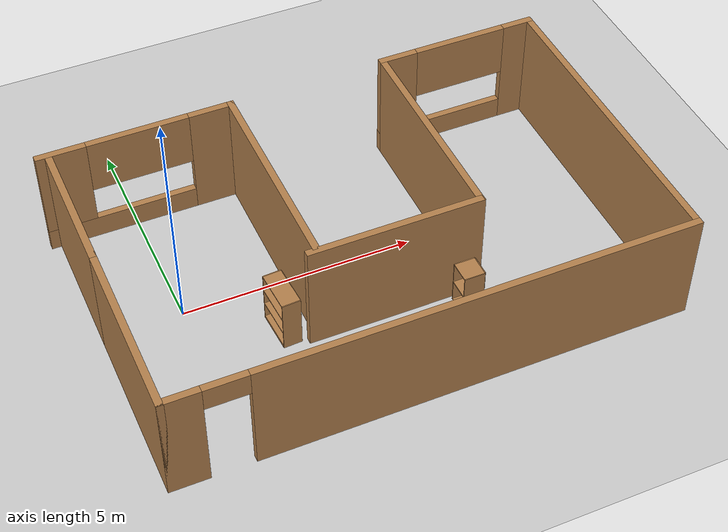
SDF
<sdf version="1.6">
 <world name="default">
  <light name="sun" type="directional">
   <pose>0 0 10 0 -0 0</pose>
   <diffuse>0.8 0.8 0.8 1</diffuse>
   <specular>0.2 0.2 0.2 1</specular>
   <attenuation>
    <range>1000</range>
    <constant>0.9</constant>
    <linear>0.01</linear>
    <quadratic>0.001</quadratic>
   </attenuation>
   <direction>-0.5 0.1 -0.9</direction>
  </light>
  <model name="ground_plane">
   <static>1</static>
   <link name="link">
    <collision name="collision">
     <geometry><plane><normal>0 0 1</normal><size>100 100</size></plane></geometry>
     <surface>
      <contact><collide_bitmask>65535</collide_bitmask></contact>
      <friction><ode><mu>100</mu><mu2>50</mu2></ode></friction>
     </surface>
    </collision>
    <visual name="visual">
     <cast_shadows>0</cast_shadows>
     <geometry><plane><normal>0 0 1</normal><size>100 100</size></plane></geometry>
     <material>
      <script><uri>file://media/materials/scripts/gazebo.material</uri><name>Gazebo/Grey</name></script>
     </material>
    </visual>
   </link>
  </model>
  <gravity>0 0 -9.8</gravity>
  <magnetic_field>6e-06 2.3e-05 -4.2e-05</magnetic_field>
  <atmosphere type="adiabatic"/>
  <physics name="default_physics" default="0" type="ode">
   <max_step_size>0.001</max_step_size>
   <real_time_factor>1</real_time_factor>
   <real_time_update_rate>1000</real_time_update_rate>
  </physics>
  <scene><ambient>0.4 0.4 0.4 1</ambient><background>0.7 0.7 0.7 1</background><shadows>1</shadows></scene>
  <spherical_coordinates>
   <surface_model>EARTH_WGS84</surface_model>
   <latitude_deg>0</latitude_deg>
   <longitude_deg>0</longitude_deg>
   <elevation>0</elevation>
   <heading_deg>0</heading_deg>
  </spherical_coordinates>
  <model name="HomeServiceRobot">
   <pose>3.70729 -0.514543 0 0 -0 0</pose>
   <link name="Wall_0">
    <collision name="Wall_0_Collision">
     <geometry><box><size>3 0.15 2.5</size></box></geometry>
     <pose>0 0 1.25 0 -0 0</pose>
    </collision>
    <visual name="Wall_0_Visual">
     <pose>0 0 1.25 0 -0 0</pose>
     <geometry><box><size>3 0.15 2.5</size></box></geometry>
     <material>
      <script><uri>file://media/materials/scripts/gazebo.material</uri><name>Gazebo/Wood</name></script>
      <ambient>1 1 1 1</ambient>
     </material>
     <meta><layer>0</layer></meta>
    </visual>
    <pose>-5.325 1.85 0 0 0 -1.5708</pose>
   </link>
   <link name="Wall_1">
    <collision name="Wall_1_Collision">
     <geometry><box><size>4 0.15 2.5</size></box></geometry>
     <pose>0 0 1.25 0 -0 0</pose>
    </collision>
    <visual name="Wall_1_Visual">
     <pose>0 0 1.25 0 -0 0</pose>
     <geometry><box><size>4 0.15 2.5</size></box></geometry>
     <material>
      <script><uri>file://media/materials/scripts/gazebo.material</uri><name>Gazebo/Wood</name></script>
      <ambient>1 1 1 1</ambient>
     </material>
     <meta><layer>0</layer></meta>
    </visual>
    <pose>-5.325 -1.5 0 0 0 -1.5708</pose>
   </link>
   <link name="Wall_10">
    <collision name="Wall_10_Collision">
     <geometry><box><size>4.75 0.15 2.5</size></box></geometry>
     <pose>0 0 1.25 0 -0 0</pose>
    </collision>
    <visual name="Wall_10_Visual">
     <pose>0 0 1.25 0 -0 0</pose>
     <geometry><box><size>4.75 0.15 2.5</size></box></geometry>
     <material>
      <script><uri>file://media/materials/scripts/gazebo.material</uri><name>Gazebo/Wood</name></script>
      <ambient>1 1 1 1</ambient>
     </material>
     <meta><layer>0</layer></meta>
    </visual>
    <pose>2.015 1.125 0 0 0 -1.5708</pose>
   </link>
   <link name="Wall_11">
    <collision name="Wall_11_Collision">
     <geometry><box><size>3.75 0.15 2.5</size></box></geometry>
     <pose>0 0 1.25 0 -0 0</pose>
    </collision>
    <visual name="Wall_11_Visual">
     <pose>0 0 1.25 0 -0 0</pose>
     <geometry><box><size>3.75 0.15 2.5</size></box></geometry>
     <material>
      <script><uri>file://media/materials/scripts/gazebo.material</uri><name>Gazebo/Wood</name></script>
      <ambient>1 1 1 1</ambient>
     </material>
     <meta><layer>0</layer></meta>
    </visual>
    <pose>0.215 -1.175 0 0 -0 3.14159</pose>
   </link>
   <link name="Wall_2">
    <pose>0.1 -3.425 0 0 -0 0</pose>
    <visual name="Wall_2_Visual_0">
     <pose>-5.07882 0 1.25 0 -0 0</pose>
     <geometry><box><size>0.842355 0.15 2.5</size></box></geometry>
     <material>
      <script><uri>file://media/materials/scripts/gazebo.material</uri><name>Gazebo/Wood</name></script>
      <ambient>1 1 1 1</ambient>
     </material>
     <meta><layer>0</layer></meta>
    </visual>
    <collision name="Wall_2_Collision_0">
     <geometry><box><size>0.842355 0.15 2.5</size></box></geometry>
     <pose>-5.07882 0 1.25 0 -0 0</pose>
    </collision>
    <visual name="Wall_2_Visual_1">
     <pose>0.871178 0 1.25 0 -0 0</pose>
     <geometry><box><size>9.25765 0.15 2.5</size></box></geometry>
     <material>
      <script><uri>file://media/materials/scripts/gazebo.material</uri><name>Gazebo/Wood</name></script>
      <ambient>1 1 1 1</ambient>
     </material>
     <meta><layer>0</layer></meta>
    </visual>
    <collision name="Wall_2_Collision_1">
     <geometry><box><size>9.25765 0.15 2.5</size></box></geometry>
     <pose>0.871178 0 1.25 0 -0 0</pose>
    </collision>
    <visual name="Wall_2_Visual_2">
     <pose>-4.20765 0 2.25 0 -0 0</pose>
     <geometry><box><size>0.9 0.15 0.5</size></box></geometry>
     <material>
      <script><uri>file://media/materials/scripts/gazebo.material</uri><name>Gazebo/Wood</name></script>
      <ambient>1 1 1 1</ambient>
     </material>
     <meta><layer>0</layer></meta>
    </visual>
    <collision name="Wall_2_Collision_2">
     <geometry><box><size>0.9 0.15 0.5</size></box></geometry>
     <pose>-4.20765 0 2.25 0 -0 0</pose>
    </collision>
   </link>
   <link name="Wall_3">
    <collision name="Wall_3_Collision">
     <geometry><box><size>7 0.15 2.5</size></box></geometry>
     <pose>0 0 1.25 0 -0 0</pose>
    </collision>
    <visual name="Wall_3_Visual">
     <pose>0 0 1.25 0 -0 0</pose>
     <geometry><box><size>7 0.15 2.5</size></box></geometry>
     <material>
      <script><uri>file://media/materials/scripts/gazebo.material</uri><name>Gazebo/Wood</name></script>
      <ambient>1 1 1 1</ambient>
     </material>
     <meta><layer>0</layer></meta>
    </visual>
    <pose>5.525 0 0 0 -0 1.5708</pose>
   </link>
   <link name="Wall_4">
    <pose>3.77 3.425 0 0 -0 3.14159</pose>
    <visual name="Wall_4_Visual_0">
     <pose>-1.47143 0 1.25 0 -0 0</pose>
     <geometry><box><size>0.717145 0.15 2.5</size></box></geometry>
     <material>
      <script><uri>file://media/materials/scripts/gazebo.material</uri><name>Gazebo/Wood</name></script>
      <ambient>1 1 1 1</ambient>
     </material>
     <meta><layer>0</layer></meta>
    </visual>
    <collision name="Wall_4_Collision_0">
     <geometry><box><size>0.717145 0.15 2.5</size></box></geometry>
     <pose>-1.47143 0 1.25 0 -0 0</pose>
    </collision>
    <visual name="Wall_4_Visual_1">
     <pose>0.358572 0 0.25 0 -0 0</pose>
     <geometry><box><size>2.94286 0.15 0.5</size></box></geometry>
     <material>
      <script><uri>file://media/materials/scripts/gazebo.material</uri><name>Gazebo/Wood</name></script>
      <ambient>1 1 1 1</ambient>
     </material>
     <meta><layer>0</layer></meta>
    </visual>
    <collision name="Wall_4_Collision_1">
     <geometry><box><size>2.94286 0.15 0.5</size></box></geometry>
     <pose>0.358572 0 0.25 0 -0 0</pose>
    </collision>
    <visual name="Wall_4_Visual_2">
     <pose>1.39682 0 1.5 0 -0 0</pose>
     <geometry><box><size>0.866355 0.15 2</size></box></geometry>
     <material>
      <script><uri>file://media/materials/scripts/gazebo.material</uri><name>Gazebo/Wood</name></script>
      <ambient>1 1 1 1</ambient>
     </material>
     <meta><layer>0</layer></meta>
    </visual>
    <collision name="Wall_4_Collision_2">
     <geometry><box><size>0.866355 0.15 2</size></box></geometry>
     <pose>1.39682 0 1.5 0 -0 0</pose>
    </collision>
    <visual name="Wall_4_Visual_3">
     <pose>-0.074605 0 1.9 0 -0 0</pose>
     <geometry><box><size>2.0765 0.15 1.2</size></box></geometry>
     <material>
      <script><uri>file://media/materials/scripts/gazebo.material</uri><name>Gazebo/Wood</name></script>
      <ambient>1 1 1 1</ambient>
     </material>
     <meta><layer>0</layer></meta>
    </visual>
    <collision name="Wall_4_Collision_3">
     <geometry><box><size>2.0765 0.15 1.2</size></box></geometry>
     <pose>-0.074605 0 1.9 0 -0 0</pose>
    </collision>
   </link>
   <link name="Wall_7">
    <collision name="Wall_7_Collision">
     <geometry><box><size>4.65 0.15 2.5</size></box></geometry>
     <pose>0 0 1.25 0 -0 0</pose>
    </collision>
    <visual name="Wall_7_Visual">
     <pose>0 0 1.25 0 -0 0</pose>
     <geometry><box><size>4.65 0.15 2.5</size></box></geometry>
     <material>
      <script><uri>file://media/materials/scripts/gazebo.material</uri><name>Gazebo/Wood</name></script>
      <ambient>1 1 1 1</ambient>
     </material>
     <meta><layer>0</layer></meta>
    </visual>
    <pose>-1.425 1.175 0 0 -0 1.5708</pose>
   </link>
   <link name="Wall_8">
    <pose>-3.475 3.425 0 0 -0 3.14159</pose>
    <visual name="Wall_8_Visual_0">
     <pose>-1.61893 0 1.25 0 -0 0</pose>
     <geometry><box><size>1.01215 0.15 2.5</size></box></geometry>
     <material>
      <script><uri>file://media/materials/scripts/gazebo.material</uri><name>Gazebo/Wood</name></script>
      <ambient>1 1 1 1</ambient>
     </material>
     <meta><layer>0</layer></meta>
    </visual>
    <collision name="Wall_8_Collision_0">
     <geometry><box><size>1.01215 0.15 2.5</size></box></geometry>
     <pose>-1.61893 0 1.25 0 -0 0</pose>
    </collision>
    <visual name="Wall_8_Visual_1">
     <pose>0.506072 0 0.25 0 -0 0</pose>
     <geometry><box><size>3.23786 0.15 0.5</size></box></geometry>
     <material>
      <script><uri>file://media/materials/scripts/gazebo.material</uri><name>Gazebo/Wood</name></script>
      <ambient>1 1 1 1</ambient>
     </material>
     <meta><layer>0</layer></meta>
    </visual>
    <collision name="Wall_8_Collision_1">
     <geometry><box><size>3.23786 0.15 0.5</size></box></geometry>
     <pose>0.506072 0 0.25 0 -0 0</pose>
    </collision>
    <visual name="Wall_8_Visual_2">
     <pose>1.59607 0 1.5 0 -0 0</pose>
     <geometry><box><size>1.05785 0.15 2</size></box></geometry>
     <material>
      <script><uri>file://media/materials/scripts/gazebo.material</uri><name>Gazebo/Wood</name></script>
      <ambient>1 1 1 1</ambient>
     </material>
     <meta><layer>0</layer></meta>
    </visual>
    <collision name="Wall_8_Collision_2">
     <geometry><box><size>1.05785 0.15 2</size></box></geometry>
     <pose>1.59607 0 1.5 0 -0 0</pose>
    </collision>
    <visual name="Wall_8_Visual_3">
     <pose>-0.022855 0 1.9 0 -0 0</pose>
     <geometry><box><size>2.18 0.15 1.2</size></box></geometry>
     <material>
      <script><uri>file://media/materials/scripts/gazebo.material</uri><name>Gazebo/Wood</name></script>
      <ambient>1 1 1 1</ambient>
     </material>
     <meta><layer>0</layer></meta>
    </visual>
    <collision name="Wall_8_Collision_3">
     <geometry><box><size>2.18 0.15 1.2</size></box></geometry>
     <pose>-0.022855 0 1.9 0 -0 0</pose>
    </collision>
   </link>
   <static>1</static>
  </model>
  <model name="bookshelf">
   <static>1</static>
   <link name="link">
    <inertial><mass>1</mass></inertial>
    <collision name="back">
     <pose>0 0.005 0.6 0 -0 0</pose>
     <geometry><box><size>0.9 0.01 1.2</size></box></geometry>
    </collision>
    <visual name="visual1">
     <pose>0 0.005 0.6 0 -0 0</pose>
     <geometry><box><size>0.9 0.01 1.2</size></box></geometry>
     <material>
      <script><uri>file://media/materials/scripts/gazebo.material</uri><name>Gazebo/Wood</name></script>
     </material>
    </visual>
    <collision name="left_side">
     <pose>0.45 -0.195 0.6 0 -0 0</pose>
     <geometry><box><size>0.02 0.4 1.2</size></box></geometry>
    </collision>
    <visual name="visual2">
     <pose>0.45 -0.195 0.6 0 -0 0</pose>
     <geometry><box><size>0.02 0.4 1.2</size></box></geometry>
     <material>
      <script><uri>file://media/materials/scripts/gazebo.material</uri><name>Gazebo/Wood</name></script>
     </material>
    </visual>
    <collision name="right_side">
     <pose>-0.45 -0.195 0.6 0 -0 0</pose>
     <geometry><box><size>0.02 0.4 1.2</size></box></geometry>
    </collision>
    <visual name="visual3">
     <pose>-0.45 -0.195 0.6 0 -0 0</pose>
     <geometry><box><size>0.02 0.4 1.2</size></box></geometry>
     <material>
      <script><uri>file://media/materials/scripts/gazebo.material</uri><name>Gazebo/Wood</name></script>
     </material>
    </visual>
    <collision name="bottom">
     <pose>0 -0.195 0.03 0 -0 0</pose>
     <geometry><box><size>0.88 0.4 0.06</size></box></geometry>
    </collision>
    <visual name="visual4">
     <pose>0 -0.195 0.03 0 -0 0</pose>
     <geometry><box><size>0.88 0.4 0.06</size></box></geometry>
     <material>
      <script><uri>file://media/materials/scripts/gazebo.material</uri><name>Gazebo/Wood</name></script>
     </material>
    </visual>
    <collision name="top">
     <pose>0 -0.195 1.19 0 -0 0</pose>
     <geometry><box><size>0.88 0.4 0.02</size></box></geometry>
    </collision>
    <visual name="visual5">
     <pose>0 -0.195 1.19 0 -0 0</pose>
     <geometry><box><size>0.88 0.4 0.02</size></box></geometry>
     <material>
      <script><uri>file://media/materials/scripts/gazebo.material</uri><name>Gazebo/Wood</name></script>
     </material>
    </visual>
    <collision name="low_shelf">
     <pose>0 -0.195 0.43 0 -0 0</pose>
     <geometry><box><size>0.88 0.4 0.02</size></box></geometry>
    </collision>
    <visual name="visual6">
     <pose>0 -0.195 0.43 0 -0 0</pose>
     <geometry><box><size>0.88 0.4 0.02</size></box></geometry>
     <material>
      <script><uri>file://media/materials/scripts/gazebo.material</uri><name>Gazebo/Wood</name></script>
     </material>
    </visual>
    <collision name="high_shelf">
     <pose>0 -0.195 0.8 0 -0 0</pose>
     <geometry><box><size>0.88 0.4 0.02</size></box></geometry>
    </collision>
    <visual name="visual7">
     <pose>0 -0.195 0.8 0 -0 0</pose>
     <geometry><box><size>0.88 0.4 0.02</size></box></geometry>
     <material>
      <script><uri>file://media/materials/scripts/gazebo.material</uri><name>Gazebo/Wood</name></script>
     </material>
    </visual>
   </link>
   <pose>1.90148 -1.18456 0 0 0 -1.52051</pose>
  </model>
  <model name="cabinet">
   <static>1</static>
   <link name="cabinet_bottom_plate">
    <inertial>
     <pose>0 0 -1 0 -0 0</pose>
     <inertia><ixx>2.05</ixx><ixy>0</ixy><ixz>0</ixz><iyy>2.05</iyy><iyz>0</iyz><izz>2.05</izz></inertia>
     <mass>25</mass>
    </inertial>
    <collision name="cabinet_bottom_plate_geom">
     <pose>0 0 0.01 0 -0 0</pose>
     <geometry><box><size>0.45 0.45 0.02</size></box></geometry>
    </collision>
    <visual name="cabinet_bottom_plate_geom_visual">
     <pose>0 0 0.01 0 -0 0</pose>
     <geometry><box><size>0.45 0.45 0.02</size></box></geometry>
     <material>
      <script><uri>file://media/materials/scripts/gazebo.material</uri><name>Gazebo/Wood</name></script>
     </material>
    </visual>
    <collision name="cabinet_bottom_plate_geom_cabinet_back_plate">
     <pose>0.235 0 0.51 0 -0 0</pose>
     <geometry><box><size>0.02 0.45 1.02</size></box></geometry>
    </collision>
    <visual name="cabinet_bottom_plate_geom_cabinet_back_plate_visual">
     <pose>0.235 0 0.51 0 -0 0</pose>
     <geometry><box><size>0.02 0.45 1.02</size></box></geometry>
     <material>
      <script><uri>file://media/materials/scripts/gazebo.material</uri><name>Gazebo/Wood</name></script>
     </material>
    </visual>
    <collision name="cabinet_bottom_plate_geom_cabinet_left_plate">
     <pose>0 0.235 0.51 0 -0 0</pose>
     <geometry><box><size>0.45 0.02 1.02</size></box></geometry>
    </collision>
    <visual name="cabinet_bottom_plate_geom_cabinet_left_plate_visual">
     <pose>0 0.235 0.51 0 -0 0</pose>
     <geometry><box><size>0.45 0.02 1.02</size></box></geometry>
     <material>
      <script><uri>file://media/materials/scripts/gazebo.material</uri><name>Gazebo/Wood</name></script>
     </material>
    </visual>
    <collision name="cabinet_bottom_plate_geom_cabinet_middle_plate">
     <pose>0 0 0.51 0 -0 0</pose>
     <geometry><box><size>0.45 0.45 0.02</size></box></geometry>
    </collision>
    <visual name="cabinet_bottom_plate_geom_cabinet_middle_plate_visual">
     <pose>0 0 0.51 0 -0 0</pose>
     <geometry><box><size>0.45 0.45 0.02</size></box></geometry>
     <material>
      <script><uri>file://media/materials/scripts/gazebo.material</uri><name>Gazebo/Wood</name></script>
     </material>
    </visual>
    <collision name="cabinet_bottom_plate_geom_cabinet_right_plate">
     <pose>0 -0.235 0.51 0 -0 0</pose>
     <geometry><box><size>0.45 0.02 1.02</size></box></geometry>
    </collision>
    <visual name="cabinet_bottom_plate_geom_cabinet_right_plate_visual">
     <pose>0 -0.235 0.51 0 -0 0</pose>
     <geometry><box><size>0.45 0.02 1.02</size></box></geometry>
     <material>
      <script><uri>file://media/materials/scripts/gazebo.material</uri><name>Gazebo/Wood</name></script>
     </material>
    </visual>
    <collision name="cabinet_bottom_plate_geom_cabinet_top_plate">
     <pose>0 0 1.01 0 -0 0</pose>
     <geometry><box><size>0.45 0.45 0.02</size></box></geometry>
    </collision>
    <visual name="cabinet_bottom_plate_geom_cabinet_top_plate_visual">
     <pose>0 0 1.01 0 -0 0</pose>
     <geometry><box><size>0.45 0.45 0.02</size></box></geometry>
     <material>
      <script><uri>file://media/materials/scripts/gazebo.material</uri><name>Gazebo/Wood</name></script>
     </material>
    </visual>
   </link>
   <pose>5.37016 -2.06401 0 0 -0 0</pose>
  </model>
 </world>
</sdf>
